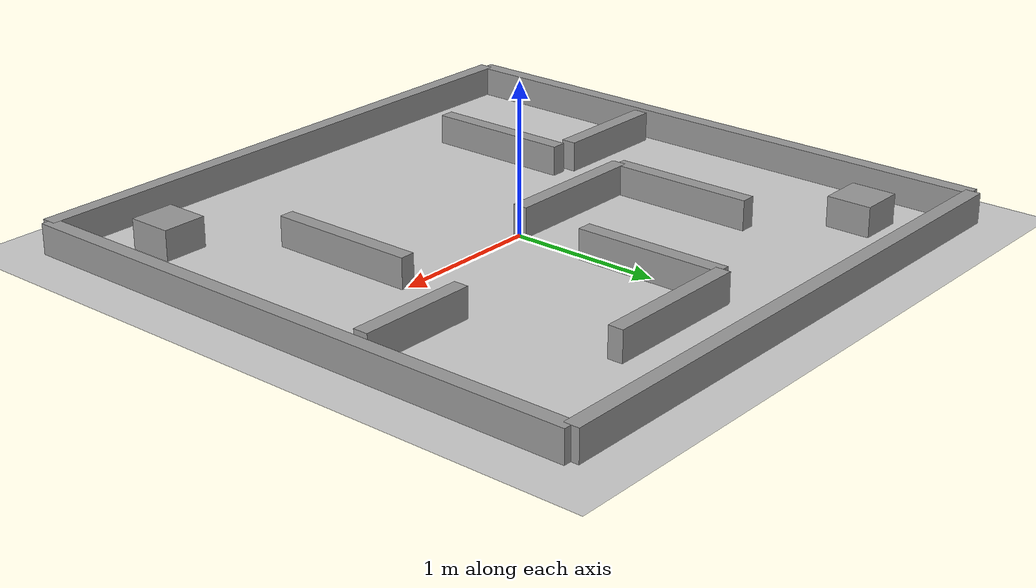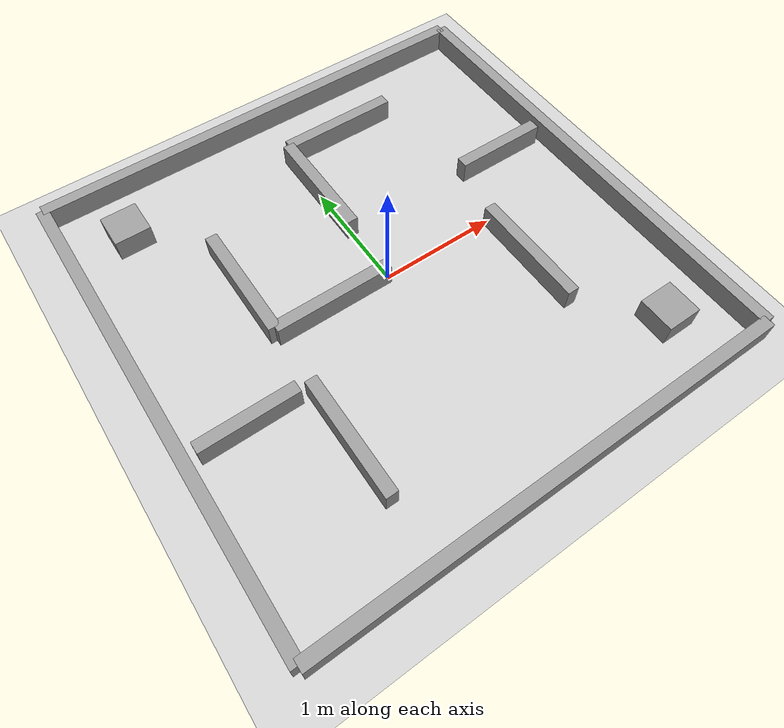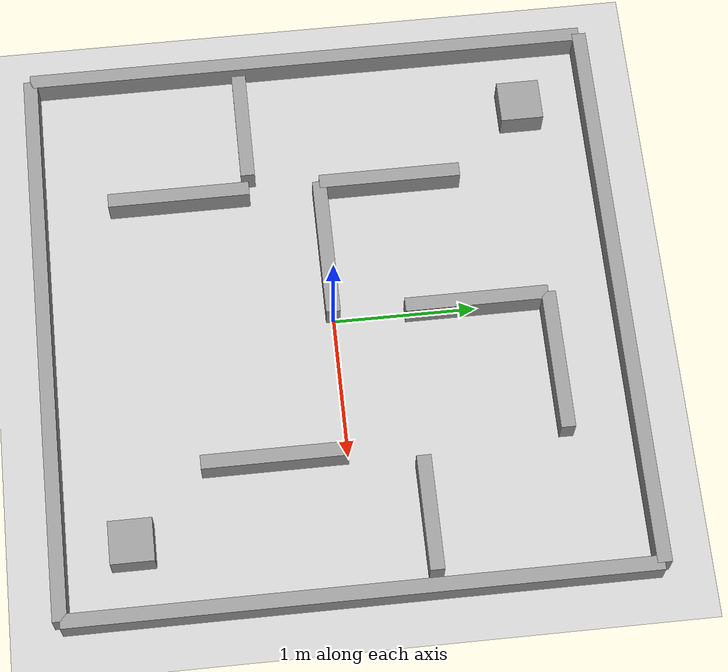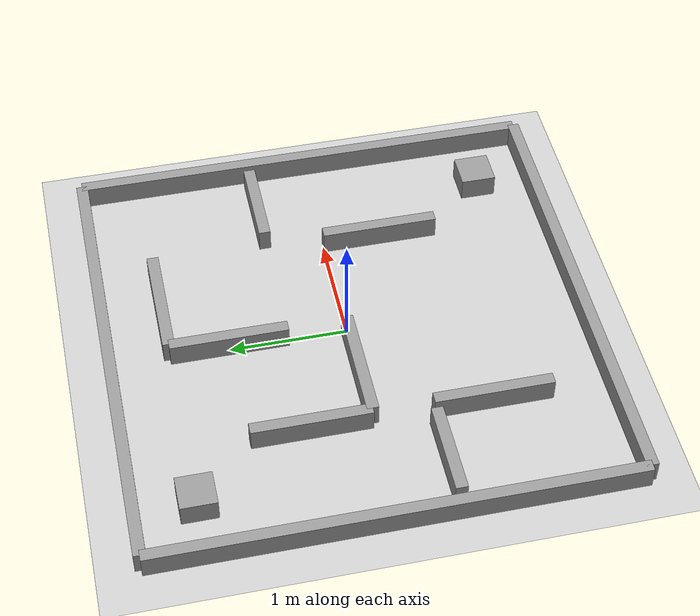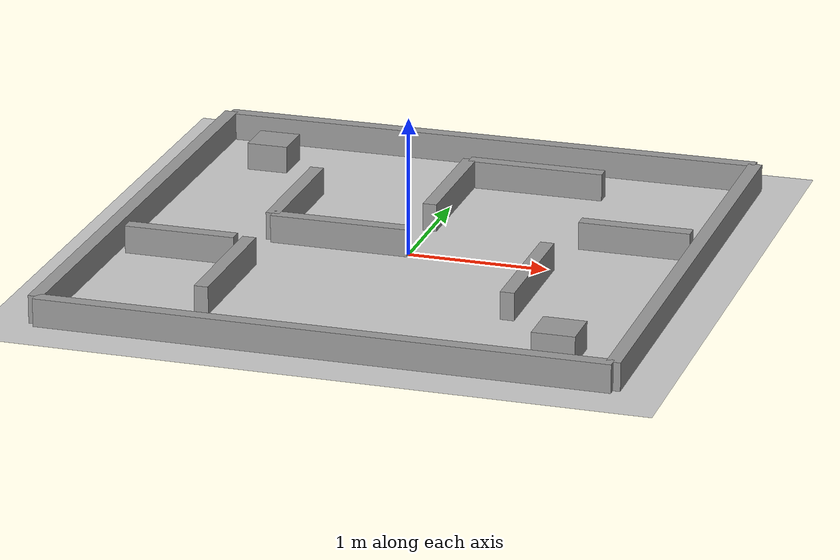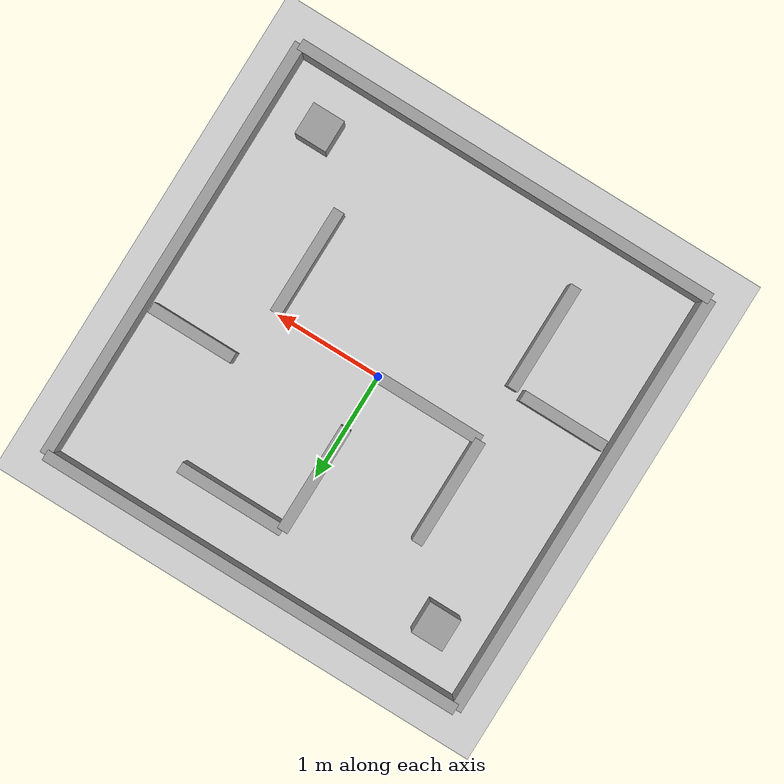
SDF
<sdf version="1.6">
 <world name="default">
  <scene><ambient>0.5 0.5 0.5 1</ambient><shadows>0</shadows><background>0.7 0.7 0.7 1</background></scene>
  <model name="ground_plane">
   <static>1</static>
   <link name="link">
    <collision name="collision">
     <geometry><plane><normal>0 0 1</normal><size>4 4</size></plane></geometry>
     <surface><friction><ode><mu>100</mu><mu2>50</mu2></ode></friction></surface>
    </collision>
    <visual name="visual">
     <cast_shadows>0</cast_shadows>
     <geometry><plane><normal>0 0 1</normal><size>4 4</size></plane></geometry>
     <material>
      <script><uri>file://media/materials/scripts/gazebo.material</uri><name>Gazebo/Grey</name></script>
     </material>
    </visual>
   </link>
  </model>
  <light name="sun" type="directional">
   <pose>0 0 10 0 0 0</pose>
   <diffuse>0.8 0.8 0.8 1</diffuse>
   <specular>0.2 0.2 0.2 1</specular>
   <direction>-0.5 0.5 -1</direction>
  </light>
  <model name="boundary_north">
   <static>1</static>
   <pose>0 2 0.1 0 0 0</pose>
   <link name="link">
    <visual name="visual">
     <geometry><box><size>4 0.1 0.2</size></box></geometry>
     <material>
      <script><name>Gazebo/Grey</name><uri>file://media/materials/scripts/gazebo.material</uri></script>
     </material>
    </visual>
    <collision name="collision"><geometry><box><size>4 0.1 0.2</size></box></geometry></collision>
   </link>
  </model>
  <model name="boundary_south">
   <static>1</static>
   <pose>0 -2 0.1 0 0 0</pose>
   <link name="link">
    <visual name="visual">
     <geometry><box><size>4 0.1 0.2</size></box></geometry>
     <material>
      <script><name>Gazebo/Grey</name><uri>file://media/materials/scripts/gazebo.material</uri></script>
     </material>
    </visual>
    <collision name="collision"><geometry><box><size>4 0.1 0.2</size></box></geometry></collision>
   </link>
  </model>
  <model name="boundary_east">
   <static>1</static>
   <pose>2 0 0.1 0 0 0</pose>
   <link name="link">
    <visual name="visual">
     <geometry><box><size>0.1 4 0.2</size></box></geometry>
     <material>
      <script><name>Gazebo/Grey</name><uri>file://media/materials/scripts/gazebo.material</uri></script>
     </material>
    </visual>
    <collision name="collision"><geometry><box><size>0.1 4 0.2</size></box></geometry></collision>
   </link>
  </model>
  <model name="boundary_west">
   <static>1</static>
   <pose>-2 0 0.1 0 0 0</pose>
   <link name="link">
    <visual name="visual">
     <geometry><box><size>0.1 4 0.2</size></box></geometry>
     <material>
      <script><name>Gazebo/Grey</name><uri>file://media/materials/scripts/gazebo.material</uri></script>
     </material>
    </visual>
    <collision name="collision"><geometry><box><size>0.1 4 0.2</size></box></geometry></collision>
   </link>
  </model>
  <model name="maze_wall_1">
   <static>1</static>
   <pose>-1 0.5 0.1 0 0 0</pose>
   <link name="link">
    <visual name="visual">
     <geometry><box><size>0.1 1 0.2</size></box></geometry>
     <material>
      <script><name>Gazebo/Grey</name><uri>file://media/materials/scripts/gazebo.material</uri></script>
     </material>
    </visual>
    <collision name="collision"><geometry><box><size>0.1 1 0.2</size></box></geometry></collision>
   </link>
  </model>
  <model name="maze_wall_2">
   <static>1</static>
   <pose>-1 -1 0.1 0 0 0</pose>
   <link name="link">
    <visual name="visual">
     <geometry><box><size>0.1 1 0.2</size></box></geometry>
     <material>
      <script><name>Gazebo/Grey</name><uri>file://media/materials/scripts/gazebo.material</uri></script>
     </material>
    </visual>
    <collision name="collision"><geometry><box><size>0.1 1 0.2</size></box></geometry></collision>
   </link>
  </model>
  <model name="maze_wall_3">
   <static>1</static>
   <pose>0 1 0.1 0 0 0</pose>
   <link name="link">
    <visual name="visual">
     <geometry><box><size>0.1 1 0.2</size></box></geometry>
     <material>
      <script><name>Gazebo/Grey</name><uri>file://media/materials/scripts/gazebo.material</uri></script>
     </material>
    </visual>
    <collision name="collision"><geometry><box><size>0.1 1 0.2</size></box></geometry></collision>
   </link>
  </model>
  <model name="maze_wall_4">
   <static>1</static>
   <pose>1 -0.5 0.1 0 0 0</pose>
   <link name="link">
    <visual name="visual">
     <geometry><box><size>0.1 1 0.2</size></box></geometry>
     <material>
      <script><name>Gazebo/Grey</name><uri>file://media/materials/scripts/gazebo.material</uri></script>
     </material>
    </visual>
    <collision name="collision"><geometry><box><size>0.1 1 0.2</size></box></geometry></collision>
   </link>
  </model>
  <model name="maze_wall_5">
   <static>1</static>
   <pose>-0.5 0 0.1 0 0 0</pose>
   <link name="link">
    <visual name="visual">
     <geometry><box><size>1 0.1 0.2</size></box></geometry>
     <material>
      <script><name>Gazebo/Grey</name><uri>file://media/materials/scripts/gazebo.material</uri></script>
     </material>
    </visual>
    <collision name="collision"><geometry><box><size>1 0.1 0.2</size></box></geometry></collision>
   </link>
  </model>
  <model name="maze_wall_6">
   <static>1</static>
   <pose>0.5 1.5 0.1 0 0 0</pose>
   <link name="link">
    <visual name="visual">
     <geometry><box><size>1 0.1 0.2</size></box></geometry>
     <material>
      <script><name>Gazebo/Grey</name><uri>file://media/materials/scripts/gazebo.material</uri></script>
     </material>
    </visual>
    <collision name="collision"><geometry><box><size>1 0.1 0.2</size></box></geometry></collision>
   </link>
  </model>
  <model name="maze_wall_7">
   <static>1</static>
   <pose>1.5 0.5 0.1 0 0 0</pose>
   <link name="link">
    <visual name="visual">
     <geometry><box><size>0.8 0.1 0.2</size></box></geometry>
     <material>
      <script><name>Gazebo/Grey</name><uri>file://media/materials/scripts/gazebo.material</uri></script>
     </material>
    </visual>
    <collision name="collision"><geometry><box><size>0.8 0.1 0.2</size></box></geometry></collision>
   </link>
  </model>
  <model name="maze_wall_8">
   <static>1</static>
   <pose>-1.5 -0.5 0.1 0 0 0</pose>
   <link name="link">
    <visual name="visual">
     <geometry><box><size>0.8 0.1 0.2</size></box></geometry>
     <material>
      <script><name>Gazebo/Grey</name><uri>file://media/materials/scripts/gazebo.material</uri></script>
     </material>
    </visual>
    <collision name="collision"><geometry><box><size>0.8 0.1 0.2</size></box></geometry></collision>
   </link>
  </model>
  <model name="maze_corner_1">
   <static>1</static>
   <pose>-1.5 1.5 0.1 0 0 0</pose>
   <link name="link">
    <visual name="visual">
     <geometry><box><size>0.3 0.3 0.2</size></box></geometry>
     <material>
      <script><name>Gazebo/Grey</name><uri>file://media/materials/scripts/gazebo.material</uri></script>
     </material>
    </visual>
    <collision name="collision"><geometry><box><size>0.3 0.3 0.2</size></box></geometry></collision>
   </link>
  </model>
  <model name="maze_corner_2">
   <static>1</static>
   <pose>1.5 -1.5 0.1 0 0 0</pose>
   <link name="link">
    <visual name="visual">
     <geometry><box><size>0.3 0.3 0.2</size></box></geometry>
     <material>
      <script><name>Gazebo/Grey</name><uri>file://media/materials/scripts/gazebo.material</uri></script>
     </material>
    </visual>
    <collision name="collision"><geometry><box><size>0.3 0.3 0.2</size></box></geometry></collision>
   </link>
  </model>
  <physics name="default_physics" default="0" type="ode">
   <max_step_size>0.005</max_step_size>
   <real_time_factor>1</real_time_factor>
   <real_time_update_rate>100</real_time_update_rate>
  </physics>
  <gravity>0 0 -9.8</gravity>
  <magnetic_field>6e-06 2.3e-05 -4.2e-05</magnetic_field>
  <atmosphere type="adiabatic"/>
 </world>
</sdf>
